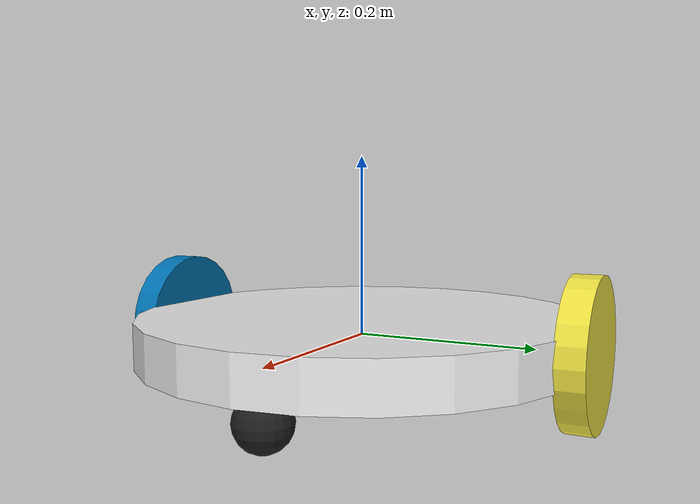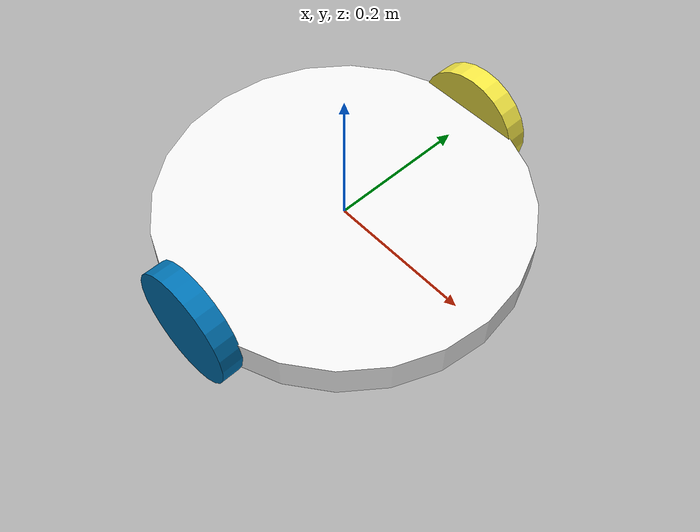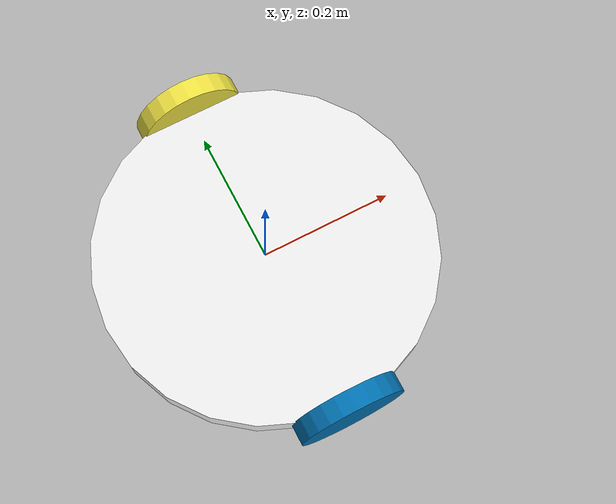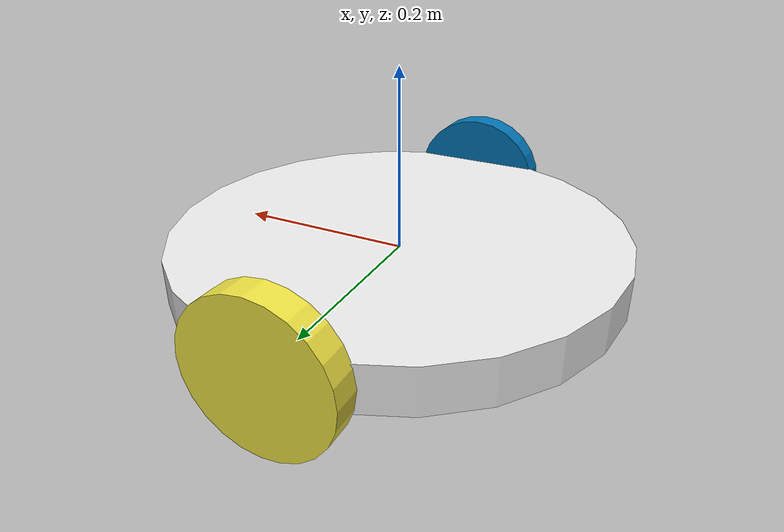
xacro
<?xml version="1.0"?>
<robot xmlns:xacro="http://www.ros.org/wiki/xacro" name="simple_bot">

  <xacro:include filename="inertial_macros.xacro"/>

  <material name="red">
    <color rgba="1 0 0 1"/>
  </material>

  <!-- Properties for easy modification -->
  <xacro:property name="wheel_radius" value="0.08" /> <!-- 3 inches / 2 -->
  <xacro:property name="wheel_width" value="0.03" /> <!-- Assuming a wheel width of 5cm -->
  <xacro:property name="chassis_radius" value="0.25" /> <!-- 10 inches / 2 -->
  <xacro:property name="chassis_height" value="0.05" /> <!-- Assuming a chassis height of 10cm -->

  <!-- Base Link -->
  <link name="base_link">

  </link>

<!-- BASE_FOOTPRINT LINK -->

<joint name="base_footprint_joint" type="fixed">
  <parent link="base_link"/>
  <child link="base_footprint"/>
  <origin xyz ="0 0 0" rpy="0 0 0"/>
</joint>

<link name="base_footprint">
</link>

  <!-- Chassis Link -->

  <joint name="chassis_joint" type="fixed">
    <parent link="base_link"/>
    <child link="chassis"/>
    <origin xyz="0 0 0"/>
  </joint>

  <link name="chassis">
    <visual>
      <geometry>
        <cylinder radius="${chassis_radius}" length="${chassis_height}"/>
      </geometry>
    </visual>
    <collision>
        <geometry>
          <cylinder radius="${chassis_radius}" length="${chassis_height}"/>
        </geometry>
    </collision>
    <inertial>
      <origin xyz="0 0 0"/>
      <mass value="1.0"/>
      <inertia ixx="0.1" ixy="0.0" ixz="0.0" iyy="0.1" iyz="0.0" izz="0.1"/>
    </inertial>
  </link>

<gazebo reference="chassis">
    <material>Gazebo/White</material>
</gazebo>

  <!-- Controlled Wheels -->
  <xacro:macro name="wheel" params="name x y w">
    <link name="${name}">
      <visual>
        <geometry>
          <cylinder radius="${wheel_radius}" length="${wheel_width}"/>
        </geometry>
      </visual>
      <collision>
        <geometry>
          <cylinder radius="${wheel_radius}" length="${wheel_width}"/>
        </geometry>
      </collision>
      <inertial>
        <origin xyz="0 0 0"/>
        <mass value="0.1"/>
        <inertia ixx="0.001" ixy="0.0" ixz="0.0" iyy="0.001" iyz="0.0" izz="0.001"/>
      </inertial>
    </link>

    <joint name="${name}_joint" type="continuous">
      <parent link="base_link"/>
      <child link="${name}"/>
      <origin xyz="${x} ${y} 0" rpy="${w} 1.570795 0"/> <!-- Updated origin and rpy values -->
      <axis xyz="0 0 1"/> <!-- Updated axis definition -->
    </joint>
  </xacro:macro>

  <!-- Instantiate the wheels -->
  <xacro:wheel name="left_wheel" x="0" y="${chassis_radius}" w="-1.570795"/>
  <xacro:wheel name="right_wheel" x="0" y="-${chassis_radius}" w="-1.570795"/>

  <!-- Caster Wheel for Stability -->
  <link name="caster_wheel">
    <visual>
      <geometry>
        <sphere radius="0.03"/> <!-- Smaller sphere for simplicity -->
      </geometry>
    </visual>
    <collision>
      <geometry>
        <sphere radius="0.03"/>
      </geometry>
    </collision>
    <inertial>
      <origin xyz="0 0 0"/>
      <mass value="0.3"/>
      <inertia ixx="0.0001" ixy="0.0" ixz="0.0" iyy="0.0001" iyz="0.0" izz="0.0001"/>
    </inertial>
  </link>

<gazebo reference="caster_wheel">
    <material>Gazebo/Black</material>
    <mu1 value="0.001"/>
    <mu2 value="0.001"/>
</gazebo>

  <joint name="caster_joint" type="fixed">
    <parent link="base_link"/>
    <child link="caster_wheel"/>
    <origin xyz="0.2 0 -0.05" rpy="0 0 0"/>
  </joint>

</robot>
